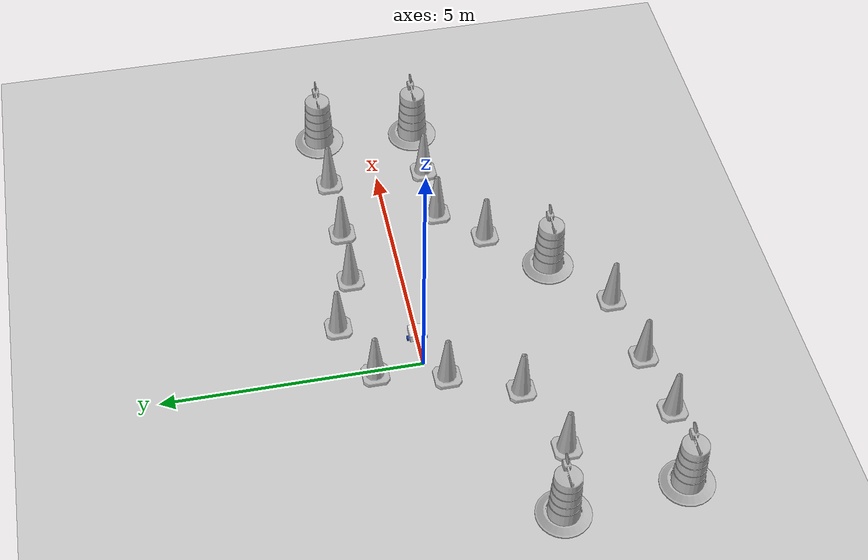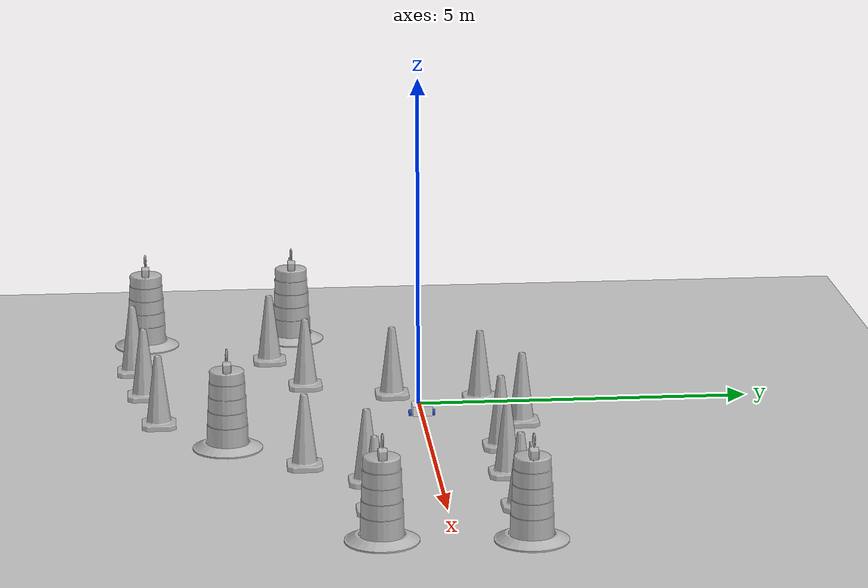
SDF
<sdf version="1.7">
 <world name="default">
  <light name="sun" type="directional">
   <pose>0 0 10 0 -0 0</pose>
   <diffuse>0.8 0.8 0.8 1</diffuse>
   <specular>0.2 0.2 0.2 1</specular>
   <attenuation>
    <range>1000</range>
    <constant>0.9</constant>
    <linear>0.01</linear>
    <quadratic>0.001</quadratic>
   </attenuation>
   <direction>-0.5 0.1 -0.9</direction>
   <spot><inner_angle>0</inner_angle><outer_angle>0</outer_angle><falloff>0</falloff></spot>
  </light>
  <model name="ground_plane">
   <static>1</static>
   <link name="link">
    <collision name="collision">
     <geometry><plane><normal>0 0 1</normal><size>100 100</size></plane></geometry>
     <surface>
      <contact><collide_bitmask>65535</collide_bitmask></contact>
      <friction><ode><mu>100</mu><mu2>50</mu2></ode></friction>
     </surface>
    </collision>
    <visual name="visual">
     <cast_shadows>0</cast_shadows>
     <geometry><plane><normal>0 0 1</normal><size>100 100</size></plane></geometry>
     <material>
      <script><uri>file://media/materials/scripts/gazebo.material</uri><name>Gazebo/Grey</name></script>
     </material>
    </visual>
   </link>
  </model>
  <gravity>0 0 -9.8</gravity>
  <magnetic_field>6e-06 2.3e-05 -4.2e-05</magnetic_field>
  <atmosphere type="adiabatic"/>
  <physics type="ode">
   <max_step_size>0.001</max_step_size>
   <real_time_factor>1</real_time_factor>
   <real_time_update_rate>1000</real_time_update_rate>
  </physics>
  <scene><ambient>0.4 0.4 0.4 1</ambient><background>0.7 0.7 0.7 1</background><shadows>1</shadows></scene>
  <spherical_coordinates>
   <surface_model>EARTH_WGS84</surface_model>
   <latitude_deg>0</latitude_deg>
   <longitude_deg>0</longitude_deg>
   <elevation>0</elevation>
   <heading_deg>0</heading_deg>
  </spherical_coordinates>
  <model name="my_bot">
   <link name="base_link">
    <inertial>
     <pose>0.065 0 0.0625 0 -0 0</pose>
     <mass>0.6</mass>
     <inertia>
      <ixx>0.0151562</ixx>
      <ixy>0</ixy>
      <ixz>0.0005625</ixz>
      <iyy>0.0158313</iyy>
      <iyz>0</iyz>
      <izz>0.018175</izz>
     </inertia>
    </inertial>
    <collision name="base_link_fixed_joint_lump__chassis_collision">
     <pose>0.05 0 0.075 0 -0 0</pose>
     <geometry><box><size>0.3 0.3 0.15</size></box></geometry>
    </collision>
    <collision name="base_link_fixed_joint_lump__caster_wheel_collision_1">
     <pose>0.14 0 0 0 -0 0</pose>
     <geometry><sphere><radius>0.05</radius></sphere></geometry>
     <surface><friction><ode><mu>0.001</mu><mu2>0.001</mu2></ode></friction></surface>
    </collision>
    <visual name="base_link_fixed_joint_lump__chassis_visual">
     <pose>0.05 0 0.075 0 -0 0</pose>
     <geometry><box><size>0.3 0.3 0.15</size></box></geometry>
     <material>
      <script><name>Gazebo/White</name><uri>file://media/materials/scripts/gazebo.material</uri></script>
     </material>
    </visual>
    <visual name="base_link_fixed_joint_lump__caster_wheel_visual_1">
     <pose>0.14 0 0 0 -0 0</pose>
     <geometry><sphere><radius>0.05</radius></sphere></geometry>
     <material>
      <script><name>Gazebo/Black</name><uri>file://media/materials/scripts/gazebo.material</uri></script>
     </material>
    </visual>
   </link>
   <joint name="left_wheel_joint" type="revolute">
    <pose relative_to="base_link">0 0.175 0 -1.5708 0 0</pose>
    <parent>base_link</parent>
    <child>left_wheel</child>
    <axis>
     <xyz>0 0 1</xyz>
     <limit><lower>-1e+16</lower><upper>1e+16</upper></limit>
     <dynamics><spring_reference>0</spring_reference><spring_stiffness>0</spring_stiffness></dynamics>
    </axis>
   </joint>
   <link name="left_wheel">
    <pose relative_to="left_wheel_joint">0 0 0 0 -0 0</pose>
    <inertial>
     <mass>0.1</mass>
     <inertia>
      <ixx>7.58333e-05</ixx>
      <ixy>0</ixy>
      <ixz>0</ixz>
      <iyy>7.58333e-05</iyy>
      <iyz>0</iyz>
      <izz>0.000125</izz>
     </inertia>
    </inertial>
    <collision name="left_wheel_collision">
     <geometry><cylinder><length>0.04</length><radius>0.05</radius></cylinder></geometry>
    </collision>
    <visual name="left_wheel_visual">
     <geometry><cylinder><length>0.04</length><radius>0.05</radius></cylinder></geometry>
     <material>
      <script><name>Gazebo/Blue</name><uri>file://media/materials/scripts/gazebo.material</uri></script>
     </material>
    </visual>
   </link>
   <joint name="right_wheel_joint" type="revolute">
    <pose relative_to="base_link">0 -0.175 0 1.5708 -0 0</pose>
    <parent>base_link</parent>
    <child>right_wheel</child>
    <axis>
     <xyz>0 0 -1</xyz>
     <limit><lower>-1e+16</lower><upper>1e+16</upper></limit>
     <dynamics><spring_reference>0</spring_reference><spring_stiffness>0</spring_stiffness></dynamics>
    </axis>
   </joint>
   <link name="right_wheel">
    <pose relative_to="right_wheel_joint">0 0 0 0 -0 0</pose>
    <inertial>
     <mass>0.1</mass>
     <inertia>
      <ixx>7.58333e-05</ixx>
      <ixy>0</ixy>
      <ixz>0</ixz>
      <iyy>7.58333e-05</iyy>
      <iyz>0</iyz>
      <izz>0.000125</izz>
     </inertia>
    </inertial>
    <collision name="right_wheel_collision">
     <geometry><cylinder><length>0.04</length><radius>0.05</radius></cylinder></geometry>
    </collision>
    <visual name="right_wheel_visual">
     <geometry><cylinder><length>0.04</length><radius>0.05</radius></cylinder></geometry>
     <material>
      <script><name>Gazebo/Blue</name><uri>file://media/materials/scripts/gazebo.material</uri></script>
     </material>
    </visual>
   </link>
   <static>0</static>
   <plugin name="diff_drive" filename="libgazebo_ros_diff_drive.so">
    <left_joint>left_wheel_joint</left_joint>
    <right_joint>right_wheel_joint</right_joint>
    <wheel_separation>0.35</wheel_separation>
    <wheel_diameter>0.1</wheel_diameter>
    <max_wheel_torque>200</max_wheel_torque>
    <max_wheel_acceleration>10.0</max_wheel_acceleration>
    <odometry_frame>odom</odometry_frame>
    <robot_base_frame>base_link</robot_base_frame>
    <publish_odom>1</publish_odom>
    <publish_odom_tf>1</publish_odom_tf>
    <publish_wheel_tf>1</publish_wheel_tf>
   </plugin>
   <pose>0.626878 0.000263 0.05 0 9e-06 0.004364</pose>
  </model>
  <model name="Construction Barrel">
   <link name="link">
    <inertial>
     <pose>0 0 0.4 0 -0 0</pose>
     <mass>500</mass>
     <inertia><ixx>51.2096</ixx><iyy>51.2096</iyy><izz>25</izz><ixy>0</ixy><ixz>0</ixz><iyz>0</iyz></inertia>
    </inertial>
    <collision name="collision">
     <geometry><mesh><uri>model://construction_barrel/meshes/construction_barrel.dae</uri></mesh></geometry>
    </collision>
    <visual name="visual">
     <geometry><mesh><uri>model://construction_barrel/meshes/construction_barrel.dae</uri></mesh></geometry>
    </visual>
   </link>
   <pose>-3.7266 -1.75876 -0 0 -0 -3.5e-05</pose>
  </model>
  <model name="Construction Barrel_0">
   <link name="link">
    <inertial>
     <pose>0 0 0.4 0 -0 0</pose>
     <mass>500</mass>
     <inertia><ixx>51.2096</ixx><iyy>51.2096</iyy><izz>25</izz><ixy>0</ixy><ixz>0</ixz><iyz>0</iyz></inertia>
    </inertial>
    <collision name="collision">
     <geometry><mesh><uri>model://construction_barrel/meshes/construction_barrel.dae</uri></mesh></geometry>
    </collision>
    <visual name="visual">
     <geometry><mesh><uri>model://construction_barrel/meshes/construction_barrel.dae</uri></mesh></geometry>
    </visual>
   </link>
   <pose>-3.51924 -4.08777 -2e-06 -7e-06 -4e-06 -2.6e-05</pose>
  </model>
  <model name="Construction Barrel_0_clone">
   <link name="link">
    <inertial>
     <pose>0 0 0.4 0 -0 0</pose>
     <mass>500</mass>
     <inertia><ixx>51.2096</ixx><iyy>51.2096</iyy><izz>25</izz><ixy>0</ixy><ixz>0</ixz><iyz>0</iyz></inertia>
    </inertial>
    <collision name="collision">
     <geometry><mesh><uri>model://construction_barrel/meshes/construction_barrel.dae</uri></mesh></geometry>
    </collision>
    <visual name="visual">
     <geometry><mesh><uri>model://construction_barrel/meshes/construction_barrel.dae</uri></mesh></geometry>
    </visual>
   </link>
   <pose>1.96937 -2.93106 1e-06 3e-06 2e-06 -3.4e-05</pose>
  </model>
  <model name="Construction Cone">
   <link name="link">
    <collision name="collision">
     <geometry>
      <mesh><scale>10 10 10</scale><uri>model://construction_cone/meshes/construction_cone.dae</uri></mesh>
     </geometry>
    </collision>
    <visual name="visual">
     <geometry>
      <mesh><scale>10 10 10</scale><uri>model://construction_cone/meshes/construction_cone.dae</uri></mesh>
     </geometry>
    </visual>
    <inertial>
     <inertia><ixx>1</ixx><ixy>0</ixy><ixz>0</ixz><iyy>1</iyy><iyz>0</iyz><izz>1</izz></inertia>
     <mass>1</mass>
    </inertial>
   </link>
   <pose>2.95347 -1.86288 -0 0 -0 0</pose>
  </model>
  <model name="Construction Cone_0">
   <link name="link">
    <collision name="collision">
     <geometry>
      <mesh><scale>10 10 10</scale><uri>model://construction_cone/meshes/construction_cone.dae</uri></mesh>
     </geometry>
    </collision>
    <visual name="visual">
     <geometry>
      <mesh><scale>10 10 10</scale><uri>model://construction_cone/meshes/construction_cone.dae</uri></mesh>
     </geometry>
    </visual>
    <inertial>
     <inertia><ixx>1</ixx><ixy>0</ixy><ixz>0</ixz><iyy>1</iyy><iyz>0</iyz><izz>1</izz></inertia>
     <mass>1</mass>
    </inertial>
   </link>
   <pose>3.74389 -1.02945 -0 0 -0 0</pose>
  </model>
  <model name="Construction Cone_clone">
   <link name="link">
    <collision name="collision">
     <geometry>
      <mesh><scale>10 10 10</scale><uri>model://construction_cone/meshes/construction_cone.dae</uri></mesh>
     </geometry>
    </collision>
    <visual name="visual">
     <geometry>
      <mesh><scale>10 10 10</scale><uri>model://construction_cone/meshes/construction_cone.dae</uri></mesh>
     </geometry>
    </visual>
    <inertial>
     <inertia><ixx>1</ixx><ixy>0</ixy><ixz>0</ixz><iyy>1</iyy><iyz>0</iyz><izz>1</izz></inertia>
     <mass>1</mass>
    </inertial>
   </link>
   <pose>-0.410888 -0.371994 -1e-05 -1e-06 0 0</pose>
  </model>
  <model name="Construction Cone_clone_0">
   <link name="link">
    <collision name="collision">
     <geometry>
      <mesh><scale>10 10 10</scale><uri>model://construction_cone/meshes/construction_cone.dae</uri></mesh>
     </geometry>
    </collision>
    <visual name="visual">
     <geometry>
      <mesh><scale>10 10 10</scale><uri>model://construction_cone/meshes/construction_cone.dae</uri></mesh>
     </geometry>
    </visual>
    <inertial>
     <inertia><ixx>1</ixx><ixy>0</ixy><ixz>0</ixz><iyy>1</iyy><iyz>0</iyz><izz>1</izz></inertia>
     <mass>1</mass>
    </inertial>
   </link>
   <pose>0.824077 -3.91932 -5e-06 -4e-06 1e-06 0</pose>
  </model>
  <model name="Construction Cone_clone_1">
   <link name="link">
    <collision name="collision">
     <geometry>
      <mesh><scale>10 10 10</scale><uri>model://construction_cone/meshes/construction_cone.dae</uri></mesh>
     </geometry>
    </collision>
    <visual name="visual">
     <geometry>
      <mesh><scale>10 10 10</scale><uri>model://construction_cone/meshes/construction_cone.dae</uri></mesh>
     </geometry>
    </visual>
    <inertial>
     <inertia><ixx>1</ixx><ixy>0</ixy><ixz>0</ixz><iyy>1</iyy><iyz>0</iyz><izz>1</izz></inertia>
     <mass>1</mass>
    </inertial>
   </link>
   <pose>-0.639231 -4.13294 -4e-06 4e-06 -1e-06 0</pose>
  </model>
  <model name="Construction Cone_clone_2">
   <link name="link">
    <collision name="collision">
     <geometry>
      <mesh><scale>10 10 10</scale><uri>model://construction_cone/meshes/construction_cone.dae</uri></mesh>
     </geometry>
    </collision>
    <visual name="visual">
     <geometry>
      <mesh><scale>10 10 10</scale><uri>model://construction_cone/meshes/construction_cone.dae</uri></mesh>
     </geometry>
    </visual>
    <inertial>
     <inertia><ixx>1</ixx><ixy>0</ixy><ixz>0</ixz><iyy>1</iyy><iyz>0</iyz><izz>1</izz></inertia>
     <mass>1</mass>
    </inertial>
   </link>
   <pose>-1.95603 -4.30134 0 0 -0 0</pose>
  </model>
  <model name="Construction Cone_clone_3">
   <link name="link">
    <collision name="collision">
     <geometry>
      <mesh><scale>10 10 10</scale><uri>model://construction_cone/meshes/construction_cone.dae</uri></mesh>
     </geometry>
    </collision>
    <visual name="visual">
     <geometry>
      <mesh><scale>10 10 10</scale><uri>model://construction_cone/meshes/construction_cone.dae</uri></mesh>
     </geometry>
    </visual>
    <inertial>
     <inertia><ixx>1</ixx><ixy>0</ixy><ixz>0</ixz><iyy>1</iyy><iyz>0</iyz><izz>1</izz></inertia>
     <mass>1</mass>
    </inertial>
   </link>
   <pose>-2.40143 -2.16337 -0 0 -1e-06 0</pose>
  </model>
  <model name="Construction Cone_clone_4">
   <link name="link">
    <collision name="collision">
     <geometry>
      <mesh><scale>10 10 10</scale><uri>model://construction_cone/meshes/construction_cone.dae</uri></mesh>
     </geometry>
    </collision>
    <visual name="visual">
     <geometry>
      <mesh><scale>10 10 10</scale><uri>model://construction_cone/meshes/construction_cone.dae</uri></mesh>
     </geometry>
    </visual>
    <inertial>
     <inertia><ixx>1</ixx><ixy>0</ixy><ixz>0</ixz><iyy>1</iyy><iyz>0</iyz><izz>1</izz></inertia>
     <mass>1</mass>
    </inertial>
   </link>
   <pose>-0.984699 -1.66633 -0 0 -1e-06 0</pose>
  </model>
  <model name="Construction Cone_clone_5">
   <link name="link">
    <collision name="collision">
     <geometry>
      <mesh><scale>10 10 10</scale><uri>model://construction_cone/meshes/construction_cone.dae</uri></mesh>
     </geometry>
    </collision>
    <visual name="visual">
     <geometry>
      <mesh><scale>10 10 10</scale><uri>model://construction_cone/meshes/construction_cone.dae</uri></mesh>
     </geometry>
    </visual>
    <inertial>
     <inertia><ixx>1</ixx><ixy>0</ixy><ixz>0</ixz><iyy>1</iyy><iyz>0</iyz><izz>1</izz></inertia>
     <mass>1</mass>
    </inertial>
   </link>
   <pose>-0.102362 0.94196 -0 0 -1e-06 0</pose>
  </model>
  <model name="Construction Cone_clone_6">
   <link name="link">
    <collision name="collision">
     <geometry>
      <mesh><scale>10 10 10</scale><uri>model://construction_cone/meshes/construction_cone.dae</uri></mesh>
     </geometry>
    </collision>
    <visual name="visual">
     <geometry>
      <mesh><scale>10 10 10</scale><uri>model://construction_cone/meshes/construction_cone.dae</uri></mesh>
     </geometry>
    </visual>
    <inertial>
     <inertia><ixx>1</ixx><ixy>0</ixy><ixz>0</ixz><iyy>1</iyy><iyz>0</iyz><izz>1</izz></inertia>
     <mass>1</mass>
    </inertial>
   </link>
   <pose>1.14055 1.44478 -4e-06 4e-06 -0 0</pose>
  </model>
  <model name="Construction Cone_clone_7">
   <link name="link">
    <collision name="collision">
     <geometry>
      <mesh><scale>10 10 10</scale><uri>model://construction_cone/meshes/construction_cone.dae</uri></mesh>
     </geometry>
    </collision>
    <visual name="visual">
     <geometry>
      <mesh><scale>10 10 10</scale><uri>model://construction_cone/meshes/construction_cone.dae</uri></mesh>
     </geometry>
    </visual>
    <inertial>
     <inertia><ixx>1</ixx><ixy>0</ixy><ixz>0</ixz><iyy>1</iyy><iyz>0</iyz><izz>1</izz></inertia>
     <mass>1</mass>
    </inertial>
   </link>
   <pose>2.29771 1.01026 -8e-06 1e-06 -0 0</pose>
  </model>
  <model name="Construction Cone_clone_8">
   <link name="link">
    <collision name="collision">
     <geometry>
      <mesh><scale>10 10 10</scale><uri>model://construction_cone/meshes/construction_cone.dae</uri></mesh>
     </geometry>
    </collision>
    <visual name="visual">
     <geometry>
      <mesh><scale>10 10 10</scale><uri>model://construction_cone/meshes/construction_cone.dae</uri></mesh>
     </geometry>
    </visual>
    <inertial>
     <inertia><ixx>1</ixx><ixy>0</ixy><ixz>0</ixz><iyy>1</iyy><iyz>0</iyz><izz>1</izz></inertia>
     <mass>1</mass>
    </inertial>
   </link>
   <pose>3.56427 0.968489 -4e-06 4e-06 -1e-06 0</pose>
  </model>
  <model name="Construction Cone_clone_9">
   <link name="link">
    <collision name="collision">
     <geometry>
      <mesh><scale>10 10 10</scale><uri>model://construction_cone/meshes/construction_cone.dae</uri></mesh>
     </geometry>
    </collision>
    <visual name="visual">
     <geometry>
      <mesh><scale>10 10 10</scale><uri>model://construction_cone/meshes/construction_cone.dae</uri></mesh>
     </geometry>
    </visual>
    <inertial>
     <inertia><ixx>1</ixx><ixy>0</ixy><ixz>0</ixz><iyy>1</iyy><iyz>0</iyz><izz>1</izz></inertia>
     <mass>1</mass>
    </inertial>
   </link>
   <pose>5 -1 -0 0 -1e-06 0</pose>
  </model>
  <model name="Construction Cone_clone_10">
   <link name="link">
    <collision name="collision">
     <geometry>
      <mesh><scale>10 10 10</scale><uri>model://construction_cone/meshes/construction_cone.dae</uri></mesh>
     </geometry>
    </collision>
    <visual name="visual">
     <geometry>
      <mesh><scale>10 10 10</scale><uri>model://construction_cone/meshes/construction_cone.dae</uri></mesh>
     </geometry>
    </visual>
    <inertial>
     <inertia><ixx>1</ixx><ixy>0</ixy><ixz>0</ixz><iyy>1</iyy><iyz>0</iyz><izz>1</izz></inertia>
     <mass>1</mass>
    </inertial>
   </link>
   <pose>5 1 -1e-05 -1e-06 0 0</pose>
  </model>
  <model name="Construction Barrel_0_clone_clone">
   <link name="link">
    <inertial>
     <pose>0 0 0.4 0 -0 0</pose>
     <mass>500</mass>
     <inertia><ixx>51.2096</ixx><iyy>51.2096</iyy><izz>25</izz><ixy>0</ixy><ixz>0</ixz><iyz>0</iyz></inertia>
    </inertial>
    <collision name="collision">
     <geometry><mesh><uri>model://construction_barrel/meshes/construction_barrel.dae</uri></mesh></geometry>
    </collision>
    <visual name="visual">
     <geometry><mesh><uri>model://construction_barrel/meshes/construction_barrel.dae</uri></mesh></geometry>
    </visual>
   </link>
   <pose>6.18063 -0.985215 1e-06 3e-06 2e-06 -3.4e-05</pose>
  </model>
  <model name="Construction Barrel_0_clone_clone_0">
   <link name="link">
    <inertial>
     <pose>0 0 0.4 0 -0 0</pose>
     <mass>500</mass>
     <inertia><ixx>51.2096</ixx><iyy>51.2096</iyy><izz>25</izz><ixy>0</ixy><ixz>0</ixz><iyz>0</iyz></inertia>
    </inertial>
    <collision name="collision">
     <geometry><mesh><uri>model://construction_barrel/meshes/construction_barrel.dae</uri></mesh></geometry>
    </collision>
    <visual name="visual">
     <geometry><mesh><uri>model://construction_barrel/meshes/construction_barrel.dae</uri></mesh></geometry>
    </visual>
   </link>
   <pose>6.32435 1.00787 1e-06 3e-06 2e-06 -3.3e-05</pose>
  </model>
 </world>
</sdf>
